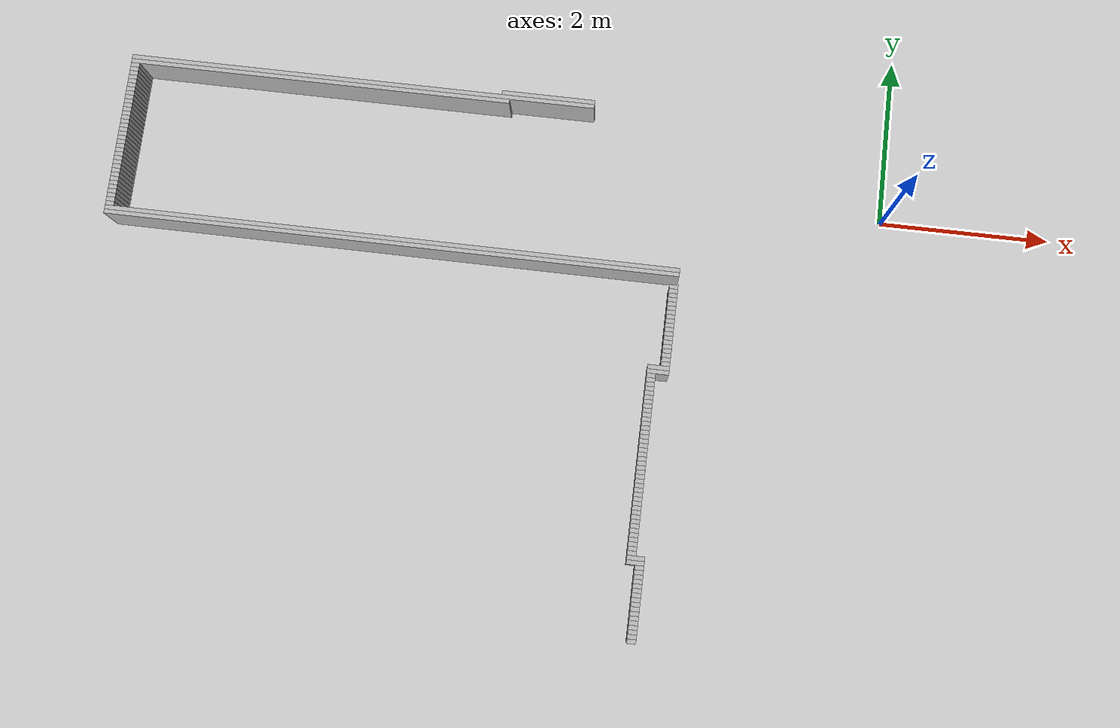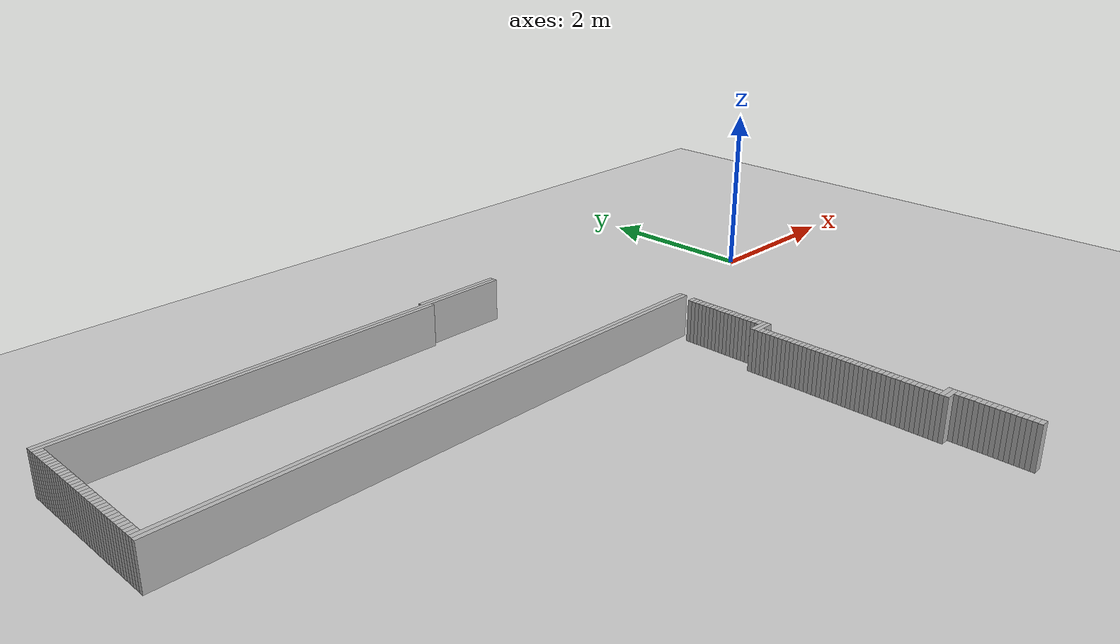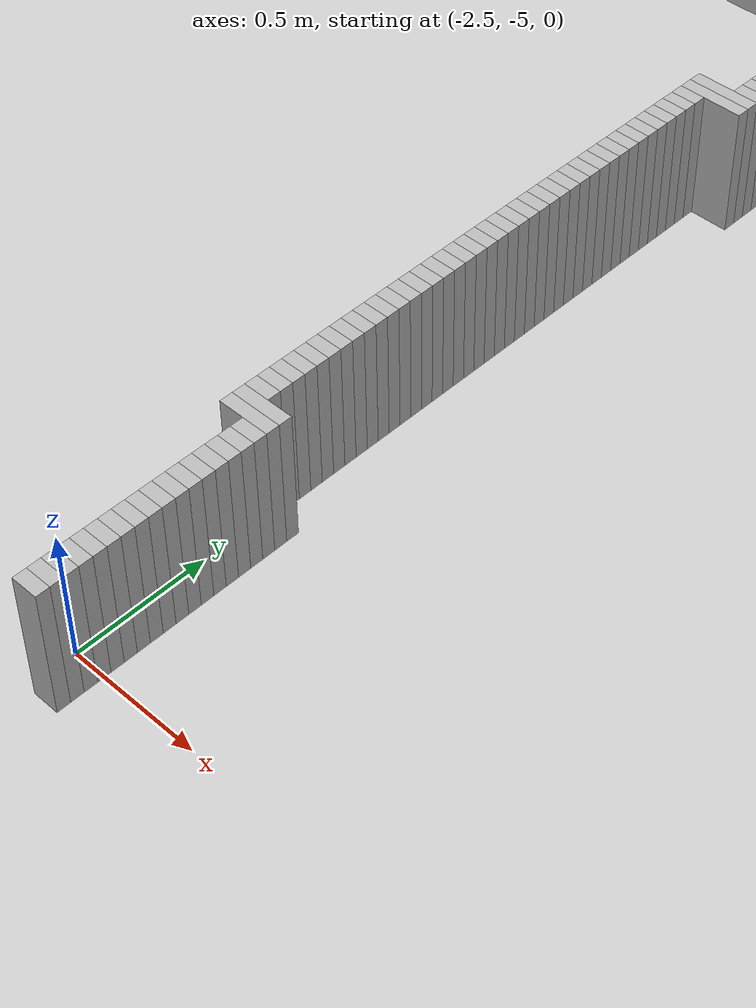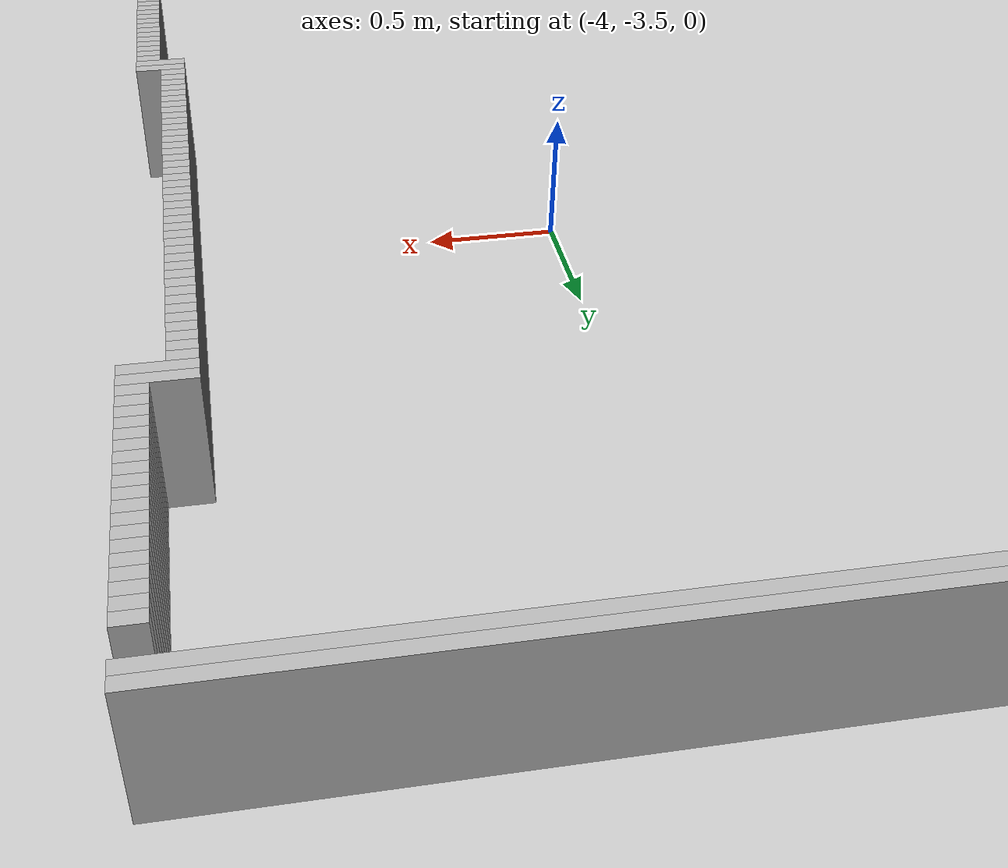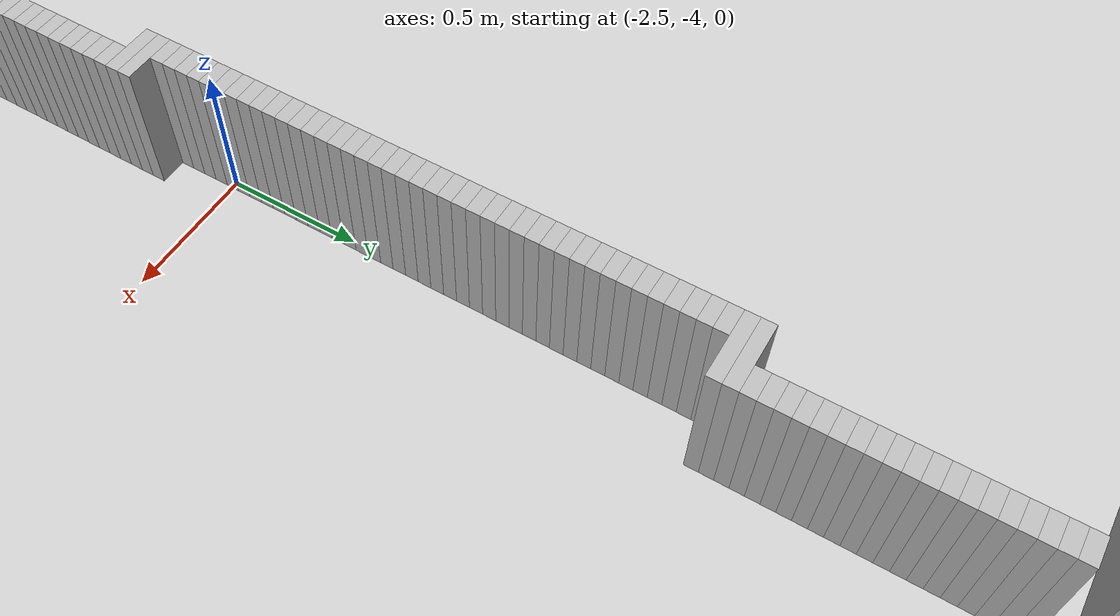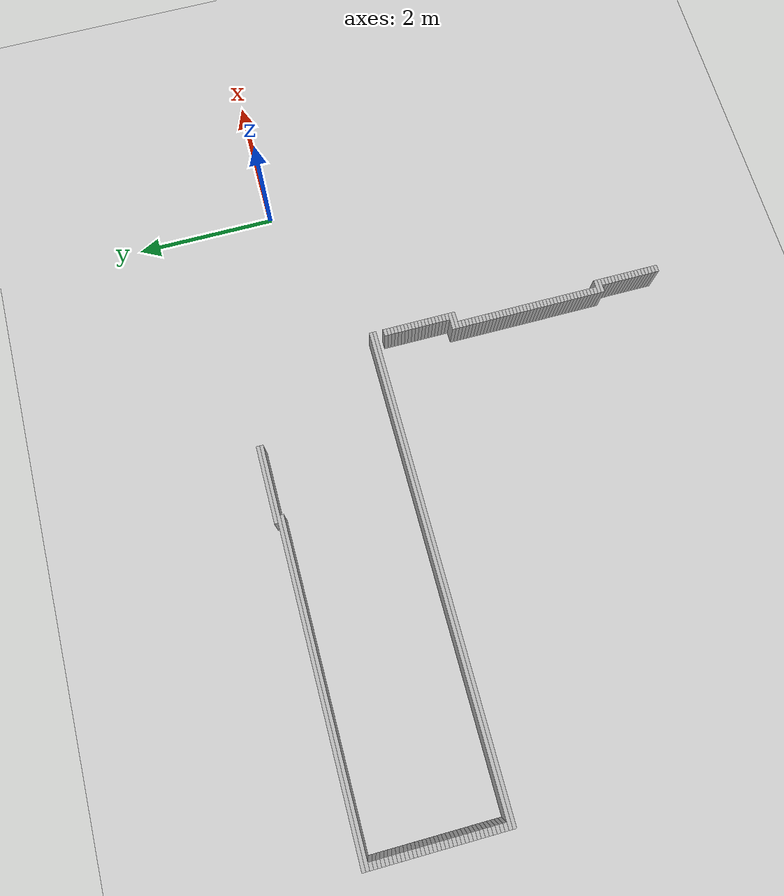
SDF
<sdf version="1.6">
 <world name="optimized_map_world">
  <include><uri>model://sun</uri></include>
  <include><uri>model://ground_plane</uri></include>
  <model name="obstacle_0">
   <static>true</static>
   <link name="link">
    <collision name="collision"><geometry><box><size>1.1 0.05 0.5</size></box></geometry></collision>
    <visual name="visual"><geometry><box><size>1.1 0.05 0.5</size></box></geometry></visual>
   </link>
   <pose>-4.074999999999999 0.9499999999999993 0.25 0 0 0</pose>
  </model>
  <model name="obstacle_1">
   <static>true</static>
   <link name="link">
    <collision name="collision"><geometry><box><size>5.5 0.05 0.5</size></box></geometry></collision>
    <visual name="visual"><geometry><box><size>5.5 0.05 0.5</size></box></geometry></visual>
   </link>
   <pose>-6.274999999999999 0.9000000000000021 0.25 0 0 0</pose>
  </model>
  <model name="obstacle_2">
   <static>true</static>
   <link name="link">
    <collision name="collision"><geometry><box><size>4.5 0.05 0.5</size></box></geometry></collision>
    <visual name="visual"><geometry><box><size>4.5 0.05 0.5</size></box></geometry></visual>
   </link>
   <pose>-6.774999999999999 0.8500000000000014 0.25 0 0 0</pose>
  </model>
  <model name="obstacle_4">
   <static>true</static>
   <link name="link">
    <collision name="collision"><geometry><box><size>0.1 0.05 0.5</size></box></geometry></collision>
    <visual name="visual"><geometry><box><size>0.1 0.05 0.5</size></box></geometry></visual>
   </link>
   <pose>-8.974999999999998 0.8000000000000007 0.25 0 0 0</pose>
  </model>
  <model name="obstacle_6">
   <static>true</static>
   <link name="link">
    <collision name="collision"><geometry><box><size>0.1 0.05 0.5</size></box></geometry></collision>
    <visual name="visual"><geometry><box><size>0.1 0.05 0.5</size></box></geometry></visual>
   </link>
   <pose>-8.974999999999998 0.75 0.25 0 0 0</pose>
  </model>
  <model name="obstacle_11">
   <static>true</static>
   <link name="link">
    <collision name="collision"><geometry><box><size>0.1 0.05 0.5</size></box></geometry></collision>
    <visual name="visual"><geometry><box><size>0.1 0.05 0.5</size></box></geometry></visual>
   </link>
   <pose>-8.974999999999998 0.6999999999999993 0.25 0 0 0</pose>
  </model>
  <model name="obstacle_16">
   <static>true</static>
   <link name="link">
    <collision name="collision"><geometry><box><size>0.1 0.05 0.5</size></box></geometry></collision>
    <visual name="visual"><geometry><box><size>0.1 0.05 0.5</size></box></geometry></visual>
   </link>
   <pose>-8.974999999999998 0.6500000000000021 0.25 0 0 0</pose>
  </model>
  <model name="obstacle_21">
   <static>true</static>
   <link name="link">
    <collision name="collision"><geometry><box><size>0.1 0.05 0.5</size></box></geometry></collision>
    <visual name="visual"><geometry><box><size>0.1 0.05 0.5</size></box></geometry></visual>
   </link>
   <pose>-8.974999999999998 0.6000000000000014 0.25 0 0 0</pose>
  </model>
  <model name="obstacle_26">
   <static>true</static>
   <link name="link">
    <collision name="collision"><geometry><box><size>0.1 0.05 0.5</size></box></geometry></collision>
    <visual name="visual"><geometry><box><size>0.1 0.05 0.5</size></box></geometry></visual>
   </link>
   <pose>-8.974999999999998 0.5500000000000007 0.25 0 0 0</pose>
  </model>
  <model name="obstacle_28">
   <static>true</static>
   <link name="link">
    <collision name="collision"><geometry><box><size>0.1 0.05 0.5</size></box></geometry></collision>
    <visual name="visual"><geometry><box><size>0.1 0.05 0.5</size></box></geometry></visual>
   </link>
   <pose>-8.974999999999998 0.5 0.25 0 0 0</pose>
  </model>
  <model name="obstacle_30">
   <static>true</static>
   <link name="link">
    <collision name="collision"><geometry><box><size>0.1 0.05 0.5</size></box></geometry></collision>
    <visual name="visual"><geometry><box><size>0.1 0.05 0.5</size></box></geometry></visual>
   </link>
   <pose>-8.974999999999998 0.4499999999999993 0.25 0 0 0</pose>
  </model>
  <model name="obstacle_32">
   <static>true</static>
   <link name="link">
    <collision name="collision"><geometry><box><size>0.1 0.05 0.5</size></box></geometry></collision>
    <visual name="visual"><geometry><box><size>0.1 0.05 0.5</size></box></geometry></visual>
   </link>
   <pose>-8.974999999999998 0.40000000000000213 0.25 0 0 0</pose>
  </model>
  <model name="obstacle_34">
   <static>true</static>
   <link name="link">
    <collision name="collision"><geometry><box><size>0.1 0.05 0.5</size></box></geometry></collision>
    <visual name="visual"><geometry><box><size>0.1 0.05 0.5</size></box></geometry></visual>
   </link>
   <pose>-8.974999999999998 0.3500000000000014 0.25 0 0 0</pose>
  </model>
  <model name="obstacle_36">
   <static>true</static>
   <link name="link">
    <collision name="collision"><geometry><box><size>0.1 0.05 0.5</size></box></geometry></collision>
    <visual name="visual"><geometry><box><size>0.1 0.05 0.5</size></box></geometry></visual>
   </link>
   <pose>-8.974999999999998 0.3000000000000007 0.25 0 0 0</pose>
  </model>
  <model name="obstacle_38">
   <static>true</static>
   <link name="link">
    <collision name="collision"><geometry><box><size>0.1 0.05 0.5</size></box></geometry></collision>
    <visual name="visual"><geometry><box><size>0.1 0.05 0.5</size></box></geometry></visual>
   </link>
   <pose>-8.974999999999998 0.25 0.25 0 0 0</pose>
  </model>
  <model name="obstacle_40">
   <static>true</static>
   <link name="link">
    <collision name="collision"><geometry><box><size>0.1 0.05 0.5</size></box></geometry></collision>
    <visual name="visual"><geometry><box><size>0.1 0.05 0.5</size></box></geometry></visual>
   </link>
   <pose>-8.974999999999998 0.1999999999999993 0.25 0 0 0</pose>
  </model>
  <model name="obstacle_42">
   <static>true</static>
   <link name="link">
    <collision name="collision"><geometry><box><size>0.1 0.05 0.5</size></box></geometry></collision>
    <visual name="visual"><geometry><box><size>0.1 0.05 0.5</size></box></geometry></visual>
   </link>
   <pose>-8.974999999999998 0.15000000000000213 0.25 0 0 0</pose>
  </model>
  <model name="obstacle_44">
   <static>true</static>
   <link name="link">
    <collision name="collision"><geometry><box><size>0.1 0.05 0.5</size></box></geometry></collision>
    <visual name="visual"><geometry><box><size>0.1 0.05 0.5</size></box></geometry></visual>
   </link>
   <pose>-8.974999999999998 0.10000000000000142 0.25 0 0 0</pose>
  </model>
  <model name="obstacle_46">
   <static>true</static>
   <link name="link">
    <collision name="collision"><geometry><box><size>0.1 0.05 0.5</size></box></geometry></collision>
    <visual name="visual"><geometry><box><size>0.1 0.05 0.5</size></box></geometry></visual>
   </link>
   <pose>-8.974999999999998 0.05000000000000071 0.25 0 0 0</pose>
  </model>
  <model name="obstacle_48">
   <static>true</static>
   <link name="link">
    <collision name="collision"><geometry><box><size>0.1 0.05 0.5</size></box></geometry></collision>
    <visual name="visual"><geometry><box><size>0.1 0.05 0.5</size></box></geometry></visual>
   </link>
   <pose>-8.974999999999998 0.0 0.25 0 0 0</pose>
  </model>
  <model name="obstacle_50">
   <static>true</static>
   <link name="link">
    <collision name="collision"><geometry><box><size>0.1 0.05 0.5</size></box></geometry></collision>
    <visual name="visual"><geometry><box><size>0.1 0.05 0.5</size></box></geometry></visual>
   </link>
   <pose>-8.974999999999998 -0.05000000000000071 0.25 0 0 0</pose>
  </model>
  <model name="obstacle_52">
   <static>true</static>
   <link name="link">
    <collision name="collision"><geometry><box><size>0.1 0.05 0.5</size></box></geometry></collision>
    <visual name="visual"><geometry><box><size>0.1 0.05 0.5</size></box></geometry></visual>
   </link>
   <pose>-8.974999999999998 -0.09999999999999787 0.25 0 0 0</pose>
  </model>
  <model name="obstacle_54">
   <static>true</static>
   <link name="link">
    <collision name="collision"><geometry><box><size>0.1 0.05 0.5</size></box></geometry></collision>
    <visual name="visual"><geometry><box><size>0.1 0.05 0.5</size></box></geometry></visual>
   </link>
   <pose>-8.974999999999998 -0.14999999999999858 0.25 0 0 0</pose>
  </model>
  <model name="obstacle_56">
   <static>true</static>
   <link name="link">
    <collision name="collision"><geometry><box><size>0.1 0.05 0.5</size></box></geometry></collision>
    <visual name="visual"><geometry><box><size>0.1 0.05 0.5</size></box></geometry></visual>
   </link>
   <pose>-8.974999999999998 -0.1999999999999993 0.25 0 0 0</pose>
  </model>
  <model name="obstacle_58">
   <static>true</static>
   <link name="link">
    <collision name="collision"><geometry><box><size>0.1 0.05 0.5</size></box></geometry></collision>
    <visual name="visual"><geometry><box><size>0.1 0.05 0.5</size></box></geometry></visual>
   </link>
   <pose>-8.974999999999998 -0.25 0.25 0 0 0</pose>
  </model>
  <model name="obstacle_60">
   <static>true</static>
   <link name="link">
    <collision name="collision"><geometry><box><size>0.1 0.05 0.5</size></box></geometry></collision>
    <visual name="visual"><geometry><box><size>0.1 0.05 0.5</size></box></geometry></visual>
   </link>
   <pose>-8.974999999999998 -0.3000000000000007 0.25 0 0 0</pose>
  </model>
  <model name="obstacle_62">
   <static>true</static>
   <link name="link">
    <collision name="collision"><geometry><box><size>0.1 0.05 0.5</size></box></geometry></collision>
    <visual name="visual"><geometry><box><size>0.1 0.05 0.5</size></box></geometry></visual>
   </link>
   <pose>-8.974999999999998 -0.34999999999999787 0.25 0 0 0</pose>
  </model>
  <model name="obstacle_64">
   <static>true</static>
   <link name="link">
    <collision name="collision"><geometry><box><size>0.1 0.05 0.5</size></box></geometry></collision>
    <visual name="visual"><geometry><box><size>0.1 0.05 0.5</size></box></geometry></visual>
   </link>
   <pose>-8.974999999999998 -0.3999999999999986 0.25 0 0 0</pose>
  </model>
  <model name="obstacle_66">
   <static>true</static>
   <link name="link">
    <collision name="collision"><geometry><box><size>0.1 0.05 0.5</size></box></geometry></collision>
    <visual name="visual"><geometry><box><size>0.1 0.05 0.5</size></box></geometry></visual>
   </link>
   <pose>-8.974999999999998 -0.4499999999999993 0.25 0 0 0</pose>
  </model>
  <model name="obstacle_68">
   <static>true</static>
   <link name="link">
    <collision name="collision"><geometry><box><size>0.1 0.05 0.5</size></box></geometry></collision>
    <visual name="visual"><geometry><box><size>0.1 0.05 0.5</size></box></geometry></visual>
   </link>
   <pose>-8.974999999999998 -0.5 0.25 0 0 0</pose>
  </model>
  <model name="obstacle_70">
   <static>true</static>
   <link name="link">
    <collision name="collision"><geometry><box><size>0.1 0.05 0.5</size></box></geometry></collision>
    <visual name="visual"><geometry><box><size>0.1 0.05 0.5</size></box></geometry></visual>
   </link>
   <pose>-8.974999999999998 -0.5500000000000007 0.25 0 0 0</pose>
  </model>
  <model name="obstacle_72">
   <static>true</static>
   <link name="link">
    <collision name="collision"><geometry><box><size>0.1 0.05 0.5</size></box></geometry></collision>
    <visual name="visual"><geometry><box><size>0.1 0.05 0.5</size></box></geometry></visual>
   </link>
   <pose>-8.974999999999998 -0.5999999999999979 0.25 0 0 0</pose>
  </model>
  <model name="obstacle_74">
   <static>true</static>
   <link name="link">
    <collision name="collision"><geometry><box><size>0.1 0.05 0.5</size></box></geometry></collision>
    <visual name="visual"><geometry><box><size>0.1 0.05 0.5</size></box></geometry></visual>
   </link>
   <pose>-8.974999999999998 -0.6499999999999986 0.25 0 0 0</pose>
  </model>
  <model name="obstacle_76">
   <static>true</static>
   <link name="link">
    <collision name="collision"><geometry><box><size>0.1 0.05 0.5</size></box></geometry></collision>
    <visual name="visual"><geometry><box><size>0.1 0.05 0.5</size></box></geometry></visual>
   </link>
   <pose>-8.974999999999998 -0.6999999999999993 0.25 0 0 0</pose>
  </model>
  <model name="obstacle_78">
   <static>true</static>
   <link name="link">
    <collision name="collision"><geometry><box><size>0.1 0.05 0.5</size></box></geometry></collision>
    <visual name="visual"><geometry><box><size>0.1 0.05 0.5</size></box></geometry></visual>
   </link>
   <pose>-8.974999999999998 -0.75 0.25 0 0 0</pose>
  </model>
  <model name="obstacle_80">
   <static>true</static>
   <link name="link">
    <collision name="collision"><geometry><box><size>0.1 0.05 0.5</size></box></geometry></collision>
    <visual name="visual"><geometry><box><size>0.1 0.05 0.5</size></box></geometry></visual>
   </link>
   <pose>-8.974999999999998 -0.8000000000000007 0.25 0 0 0</pose>
  </model>
  <model name="obstacle_83">
   <static>true</static>
   <link name="link">
    <collision name="collision"><geometry><box><size>0.1 0.05 0.5</size></box></geometry></collision>
    <visual name="visual"><geometry><box><size>0.1 0.05 0.5</size></box></geometry></visual>
   </link>
   <pose>-8.974999999999998 -0.8499999999999979 0.25 0 0 0</pose>
  </model>
  <model name="obstacle_87">
   <static>true</static>
   <link name="link">
    <collision name="collision"><geometry><box><size>0.1 0.05 0.5</size></box></geometry></collision>
    <visual name="visual"><geometry><box><size>0.1 0.05 0.5</size></box></geometry></visual>
   </link>
   <pose>-8.974999999999998 -0.8999999999999986 0.25 0 0 0</pose>
  </model>
  <model name="obstacle_92">
   <static>true</static>
   <link name="link">
    <collision name="collision"><geometry><box><size>6.7 0.05 0.5</size></box></geometry></collision>
    <visual name="visual"><geometry><box><size>6.7 0.05 0.5</size></box></geometry></visual>
   </link>
   <pose>-5.674999999999999 -0.9499999999999993 0.25 0 0 0</pose>
  </model>
  <model name="obstacle_98">
   <static>true</static>
   <link name="link">
    <collision name="collision"><geometry><box><size>6.7 0.05 0.5</size></box></geometry></collision>
    <visual name="visual"><geometry><box><size>6.7 0.05 0.5</size></box></geometry></visual>
   </link>
   <pose>-5.674999999999999 -1.0 0.25 0 0 0</pose>
  </model>
  <model name="obstacle_119">
   <static>true</static>
   <link name="link">
    <collision name="collision"><geometry><box><size>0.1 0.05 0.5</size></box></geometry></collision>
    <visual name="visual"><geometry><box><size>0.1 0.05 0.5</size></box></geometry></visual>
   </link>
   <pose>-2.3749999999999982 -1.1499999999999986 0.25 0 0 0</pose>
  </model>
  <model name="obstacle_125">
   <static>true</static>
   <link name="link">
    <collision name="collision"><geometry><box><size>0.1 0.05 0.5</size></box></geometry></collision>
    <visual name="visual"><geometry><box><size>0.1 0.05 0.5</size></box></geometry></visual>
   </link>
   <pose>-2.3749999999999982 -1.1999999999999993 0.25 0 0 0</pose>
  </model>
  <model name="obstacle_130">
   <static>true</static>
   <link name="link">
    <collision name="collision"><geometry><box><size>0.1 0.05 0.5</size></box></geometry></collision>
    <visual name="visual"><geometry><box><size>0.1 0.05 0.5</size></box></geometry></visual>
   </link>
   <pose>-2.3749999999999982 -1.25 0.25 0 0 0</pose>
  </model>
  <model name="obstacle_134">
   <static>true</static>
   <link name="link">
    <collision name="collision"><geometry><box><size>0.1 0.05 0.5</size></box></geometry></collision>
    <visual name="visual"><geometry><box><size>0.1 0.05 0.5</size></box></geometry></visual>
   </link>
   <pose>-2.3749999999999982 -1.3000000000000007 0.25 0 0 0</pose>
  </model>
  <model name="obstacle_138">
   <static>true</static>
   <link name="link">
    <collision name="collision"><geometry><box><size>0.1 0.05 0.5</size></box></geometry></collision>
    <visual name="visual"><geometry><box><size>0.1 0.05 0.5</size></box></geometry></visual>
   </link>
   <pose>-2.3749999999999982 -1.3500000000000014 0.25 0 0 0</pose>
  </model>
  <model name="obstacle_142">
   <static>true</static>
   <link name="link">
    <collision name="collision"><geometry><box><size>0.1 0.05 0.5</size></box></geometry></collision>
    <visual name="visual"><geometry><box><size>0.1 0.05 0.5</size></box></geometry></visual>
   </link>
   <pose>-2.3749999999999982 -1.3999999999999986 0.25 0 0 0</pose>
  </model>
  <model name="obstacle_146">
   <static>true</static>
   <link name="link">
    <collision name="collision"><geometry><box><size>0.1 0.05 0.5</size></box></geometry></collision>
    <visual name="visual"><geometry><box><size>0.1 0.05 0.5</size></box></geometry></visual>
   </link>
   <pose>-2.3749999999999982 -1.4499999999999993 0.25 0 0 0</pose>
  </model>
  <model name="obstacle_150">
   <static>true</static>
   <link name="link">
    <collision name="collision"><geometry><box><size>0.1 0.05 0.5</size></box></geometry></collision>
    <visual name="visual"><geometry><box><size>0.1 0.05 0.5</size></box></geometry></visual>
   </link>
   <pose>-2.3749999999999982 -1.5 0.25 0 0 0</pose>
  </model>
  <model name="obstacle_154">
   <static>true</static>
   <link name="link">
    <collision name="collision"><geometry><box><size>0.1 0.05 0.5</size></box></geometry></collision>
    <visual name="visual"><geometry><box><size>0.1 0.05 0.5</size></box></geometry></visual>
   </link>
   <pose>-2.3749999999999982 -1.5500000000000007 0.25 0 0 0</pose>
  </model>
  <model name="obstacle_158">
   <static>true</static>
   <link name="link">
    <collision name="collision"><geometry><box><size>0.1 0.05 0.5</size></box></geometry></collision>
    <visual name="visual"><geometry><box><size>0.1 0.05 0.5</size></box></geometry></visual>
   </link>
   <pose>-2.3749999999999982 -1.6000000000000014 0.25 0 0 0</pose>
  </model>
  <model name="obstacle_162">
   <static>true</static>
   <link name="link">
    <collision name="collision"><geometry><box><size>0.1 0.05 0.5</size></box></geometry></collision>
    <visual name="visual"><geometry><box><size>0.1 0.05 0.5</size></box></geometry></visual>
   </link>
   <pose>-2.3749999999999982 -1.6499999999999986 0.25 0 0 0</pose>
  </model>
  <model name="obstacle_166">
   <static>true</static>
   <link name="link">
    <collision name="collision"><geometry><box><size>0.1 0.05 0.5</size></box></geometry></collision>
    <visual name="visual"><geometry><box><size>0.1 0.05 0.5</size></box></geometry></visual>
   </link>
   <pose>-2.3749999999999982 -1.6999999999999993 0.25 0 0 0</pose>
  </model>
  <model name="obstacle_170">
   <static>true</static>
   <link name="link">
    <collision name="collision"><geometry><box><size>0.1 0.05 0.5</size></box></geometry></collision>
    <visual name="visual"><geometry><box><size>0.1 0.05 0.5</size></box></geometry></visual>
   </link>
   <pose>-2.3749999999999982 -1.75 0.25 0 0 0</pose>
  </model>
  <model name="obstacle_174">
   <static>true</static>
   <link name="link">
    <collision name="collision"><geometry><box><size>0.1 0.05 0.5</size></box></geometry></collision>
    <visual name="visual"><geometry><box><size>0.1 0.05 0.5</size></box></geometry></visual>
   </link>
   <pose>-2.3749999999999982 -1.8000000000000007 0.25 0 0 0</pose>
  </model>
  <model name="obstacle_178">
   <static>true</static>
   <link name="link">
    <collision name="collision"><geometry><box><size>0.1 0.05 0.5</size></box></geometry></collision>
    <visual name="visual"><geometry><box><size>0.1 0.05 0.5</size></box></geometry></visual>
   </link>
   <pose>-2.3749999999999982 -1.8500000000000014 0.25 0 0 0</pose>
  </model>
  <model name="obstacle_182">
   <static>true</static>
   <link name="link">
    <collision name="collision"><geometry><box><size>0.1 0.05 0.5</size></box></geometry></collision>
    <visual name="visual"><geometry><box><size>0.1 0.05 0.5</size></box></geometry></visual>
   </link>
   <pose>-2.3749999999999982 -1.8999999999999986 0.25 0 0 0</pose>
  </model>
  <model name="obstacle_186">
   <static>true</static>
   <link name="link">
    <collision name="collision"><geometry><box><size>0.1 0.05 0.5</size></box></geometry></collision>
    <visual name="visual"><geometry><box><size>0.1 0.05 0.5</size></box></geometry></visual>
   </link>
   <pose>-2.3749999999999982 -1.9499999999999993 0.25 0 0 0</pose>
  </model>
  <model name="obstacle_190">
   <static>true</static>
   <link name="link">
    <collision name="collision"><geometry><box><size>0.1 0.05 0.5</size></box></geometry></collision>
    <visual name="visual"><geometry><box><size>0.1 0.05 0.5</size></box></geometry></visual>
   </link>
   <pose>-2.3749999999999982 -2.0 0.25 0 0 0</pose>
  </model>
  <model name="obstacle_194">
   <static>true</static>
   <link name="link">
    <collision name="collision"><geometry><box><size>0.1 0.05 0.5</size></box></geometry></collision>
    <visual name="visual"><geometry><box><size>0.1 0.05 0.5</size></box></geometry></visual>
   </link>
   <pose>-2.3749999999999982 -2.0500000000000007 0.25 0 0 0</pose>
  </model>
  <model name="obstacle_198">
   <static>true</static>
   <link name="link">
    <collision name="collision"><geometry><box><size>0.25 0.05 0.5</size></box></geometry></collision>
    <visual name="visual"><geometry><box><size>0.25 0.05 0.5</size></box></geometry></visual>
   </link>
   <pose>-2.4499999999999993 -2.1000000000000014 0.25 0 0 0</pose>
  </model>
  <model name="obstacle_202">
   <static>true</static>
   <link name="link">
    <collision name="collision"><geometry><box><size>0.25 0.05 0.5</size></box></geometry></collision>
    <visual name="visual"><geometry><box><size>0.25 0.05 0.5</size></box></geometry></visual>
   </link>
   <pose>-2.4499999999999993 -2.1499999999999986 0.25 0 0 0</pose>
  </model>
  <model name="obstacle_206">
   <static>true</static>
   <link name="link">
    <collision name="collision"><geometry><box><size>0.1 0.05 0.5</size></box></geometry></collision>
    <visual name="visual"><geometry><box><size>0.1 0.05 0.5</size></box></geometry></visual>
   </link>
   <pose>-2.5249999999999986 -2.1999999999999993 0.25 0 0 0</pose>
  </model>
  <model name="obstacle_210">
   <static>true</static>
   <link name="link">
    <collision name="collision"><geometry><box><size>0.1 0.05 0.5</size></box></geometry></collision>
    <visual name="visual"><geometry><box><size>0.1 0.05 0.5</size></box></geometry></visual>
   </link>
   <pose>-2.5249999999999986 -2.25 0.25 0 0 0</pose>
  </model>
  <model name="obstacle_214">
   <static>true</static>
   <link name="link">
    <collision name="collision"><geometry><box><size>0.1 0.05 0.5</size></box></geometry></collision>
    <visual name="visual"><geometry><box><size>0.1 0.05 0.5</size></box></geometry></visual>
   </link>
   <pose>-2.5249999999999986 -2.3000000000000007 0.25 0 0 0</pose>
  </model>
  <model name="obstacle_218">
   <static>true</static>
   <link name="link">
    <collision name="collision"><geometry><box><size>0.1 0.05 0.5</size></box></geometry></collision>
    <visual name="visual"><geometry><box><size>0.1 0.05 0.5</size></box></geometry></visual>
   </link>
   <pose>-2.5249999999999986 -2.3500000000000014 0.25 0 0 0</pose>
  </model>
  <model name="obstacle_222">
   <static>true</static>
   <link name="link">
    <collision name="collision"><geometry><box><size>0.1 0.05 0.5</size></box></geometry></collision>
    <visual name="visual"><geometry><box><size>0.1 0.05 0.5</size></box></geometry></visual>
   </link>
   <pose>-2.5249999999999986 -2.3999999999999986 0.25 0 0 0</pose>
  </model>
  <model name="obstacle_226">
   <static>true</static>
   <link name="link">
    <collision name="collision"><geometry><box><size>0.1 0.05 0.5</size></box></geometry></collision>
    <visual name="visual"><geometry><box><size>0.1 0.05 0.5</size></box></geometry></visual>
   </link>
   <pose>-2.5249999999999986 -2.4499999999999993 0.25 0 0 0</pose>
  </model>
  <model name="obstacle_230">
   <static>true</static>
   <link name="link">
    <collision name="collision"><geometry><box><size>0.1 0.05 0.5</size></box></geometry></collision>
    <visual name="visual"><geometry><box><size>0.1 0.05 0.5</size></box></geometry></visual>
   </link>
   <pose>-2.5249999999999986 -2.5 0.25 0 0 0</pose>
  </model>
  <model name="obstacle_234">
   <static>true</static>
   <link name="link">
    <collision name="collision"><geometry><box><size>0.1 0.05 0.5</size></box></geometry></collision>
    <visual name="visual"><geometry><box><size>0.1 0.05 0.5</size></box></geometry></visual>
   </link>
   <pose>-2.5249999999999986 -2.5500000000000007 0.25 0 0 0</pose>
  </model>
  <model name="obstacle_238">
   <static>true</static>
   <link name="link">
    <collision name="collision"><geometry><box><size>0.1 0.05 0.5</size></box></geometry></collision>
    <visual name="visual"><geometry><box><size>0.1 0.05 0.5</size></box></geometry></visual>
   </link>
   <pose>-2.5249999999999986 -2.6000000000000014 0.25 0 0 0</pose>
  </model>
  <model name="obstacle_242">
   <static>true</static>
   <link name="link">
    <collision name="collision"><geometry><box><size>0.1 0.05 0.5</size></box></geometry></collision>
    <visual name="visual"><geometry><box><size>0.1 0.05 0.5</size></box></geometry></visual>
   </link>
   <pose>-2.5249999999999986 -2.6499999999999986 0.25 0 0 0</pose>
  </model>
  <model name="obstacle_246">
   <static>true</static>
   <link name="link">
    <collision name="collision"><geometry><box><size>0.1 0.05 0.5</size></box></geometry></collision>
    <visual name="visual"><geometry><box><size>0.1 0.05 0.5</size></box></geometry></visual>
   </link>
   <pose>-2.5249999999999986 -2.6999999999999993 0.25 0 0 0</pose>
  </model>
  <model name="obstacle_250">
   <static>true</static>
   <link name="link">
    <collision name="collision"><geometry><box><size>0.1 0.05 0.5</size></box></geometry></collision>
    <visual name="visual"><geometry><box><size>0.1 0.05 0.5</size></box></geometry></visual>
   </link>
   <pose>-2.5249999999999986 -2.75 0.25 0 0 0</pose>
  </model>
  <model name="obstacle_254">
   <static>true</static>
   <link name="link">
    <collision name="collision"><geometry><box><size>0.1 0.05 0.5</size></box></geometry></collision>
    <visual name="visual"><geometry><box><size>0.1 0.05 0.5</size></box></geometry></visual>
   </link>
   <pose>-2.5249999999999986 -2.8000000000000007 0.25 0 0 0</pose>
  </model>
  <model name="obstacle_258">
   <static>true</static>
   <link name="link">
    <collision name="collision"><geometry><box><size>0.1 0.05 0.5</size></box></geometry></collision>
    <visual name="visual"><geometry><box><size>0.1 0.05 0.5</size></box></geometry></visual>
   </link>
   <pose>-2.5249999999999986 -2.8500000000000014 0.25 0 0 0</pose>
  </model>
  <model name="obstacle_262">
   <static>true</static>
   <link name="link">
    <collision name="collision"><geometry><box><size>0.1 0.05 0.5</size></box></geometry></collision>
    <visual name="visual"><geometry><box><size>0.1 0.05 0.5</size></box></geometry></visual>
   </link>
   <pose>-2.5249999999999986 -2.8999999999999986 0.25 0 0 0</pose>
  </model>
  <model name="obstacle_266">
   <static>true</static>
   <link name="link">
    <collision name="collision"><geometry><box><size>0.1 0.05 0.5</size></box></geometry></collision>
    <visual name="visual"><geometry><box><size>0.1 0.05 0.5</size></box></geometry></visual>
   </link>
   <pose>-2.5249999999999986 -2.9499999999999993 0.25 0 0 0</pose>
  </model>
  <model name="obstacle_270">
   <static>true</static>
   <link name="link">
    <collision name="collision"><geometry><box><size>0.1 0.05 0.5</size></box></geometry></collision>
    <visual name="visual"><geometry><box><size>0.1 0.05 0.5</size></box></geometry></visual>
   </link>
   <pose>-2.5249999999999986 -3.0 0.25 0 0 0</pose>
  </model>
  <model name="obstacle_274">
   <static>true</static>
   <link name="link">
    <collision name="collision"><geometry><box><size>0.1 0.05 0.5</size></box></geometry></collision>
    <visual name="visual"><geometry><box><size>0.1 0.05 0.5</size></box></geometry></visual>
   </link>
   <pose>-2.5249999999999986 -3.0500000000000007 0.25 0 0 0</pose>
  </model>
  <model name="obstacle_278">
   <static>true</static>
   <link name="link">
    <collision name="collision"><geometry><box><size>0.1 0.05 0.5</size></box></geometry></collision>
    <visual name="visual"><geometry><box><size>0.1 0.05 0.5</size></box></geometry></visual>
   </link>
   <pose>-2.5249999999999986 -3.1000000000000014 0.25 0 0 0</pose>
  </model>
  <model name="obstacle_282">
   <static>true</static>
   <link name="link">
    <collision name="collision"><geometry><box><size>0.1 0.05 0.5</size></box></geometry></collision>
    <visual name="visual"><geometry><box><size>0.1 0.05 0.5</size></box></geometry></visual>
   </link>
   <pose>-2.5249999999999986 -3.1499999999999986 0.25 0 0 0</pose>
  </model>
  <model name="obstacle_286">
   <static>true</static>
   <link name="link">
    <collision name="collision"><geometry><box><size>0.1 0.05 0.5</size></box></geometry></collision>
    <visual name="visual"><geometry><box><size>0.1 0.05 0.5</size></box></geometry></visual>
   </link>
   <pose>-2.5249999999999986 -3.1999999999999993 0.25 0 0 0</pose>
  </model>
  <model name="obstacle_290">
   <static>true</static>
   <link name="link">
    <collision name="collision"><geometry><box><size>0.1 0.05 0.5</size></box></geometry></collision>
    <visual name="visual"><geometry><box><size>0.1 0.05 0.5</size></box></geometry></visual>
   </link>
   <pose>-2.5249999999999986 -3.25 0.25 0 0 0</pose>
  </model>
  <model name="obstacle_294">
   <static>true</static>
   <link name="link">
    <collision name="collision"><geometry><box><size>0.1 0.05 0.5</size></box></geometry></collision>
    <visual name="visual"><geometry><box><size>0.1 0.05 0.5</size></box></geometry></visual>
   </link>
   <pose>-2.5249999999999986 -3.3000000000000007 0.25 0 0 0</pose>
  </model>
  <model name="obstacle_298">
   <static>true</static>
   <link name="link">
    <collision name="collision"><geometry><box><size>0.1 0.05 0.5</size></box></geometry></collision>
    <visual name="visual"><geometry><box><size>0.1 0.05 0.5</size></box></geometry></visual>
   </link>
   <pose>-2.5249999999999986 -3.3500000000000014 0.25 0 0 0</pose>
  </model>
  <model name="obstacle_302">
   <static>true</static>
   <link name="link">
    <collision name="collision"><geometry><box><size>0.1 0.05 0.5</size></box></geometry></collision>
    <visual name="visual"><geometry><box><size>0.1 0.05 0.5</size></box></geometry></visual>
   </link>
   <pose>-2.5249999999999986 -3.3999999999999986 0.25 0 0 0</pose>
  </model>
  <model name="obstacle_306">
   <static>true</static>
   <link name="link">
    <collision name="collision"><geometry><box><size>0.1 0.05 0.5</size></box></geometry></collision>
    <visual name="visual"><geometry><box><size>0.1 0.05 0.5</size></box></geometry></visual>
   </link>
   <pose>-2.5249999999999986 -3.4499999999999993 0.25 0 0 0</pose>
  </model>
  <model name="obstacle_310">
   <static>true</static>
   <link name="link">
    <collision name="collision"><geometry><box><size>0.1 0.05 0.5</size></box></geometry></collision>
    <visual name="visual"><geometry><box><size>0.1 0.05 0.5</size></box></geometry></visual>
   </link>
   <pose>-2.5249999999999986 -3.5 0.25 0 0 0</pose>
  </model>
  <model name="obstacle_314">
   <static>true</static>
   <link name="link">
    <collision name="collision"><geometry><box><size>0.1 0.05 0.5</size></box></geometry></collision>
    <visual name="visual"><geometry><box><size>0.1 0.05 0.5</size></box></geometry></visual>
   </link>
   <pose>-2.5249999999999986 -3.5500000000000007 0.25 0 0 0</pose>
  </model>
  <model name="obstacle_318">
   <static>true</static>
   <link name="link">
    <collision name="collision"><geometry><box><size>0.1 0.05 0.5</size></box></geometry></collision>
    <visual name="visual"><geometry><box><size>0.1 0.05 0.5</size></box></geometry></visual>
   </link>
   <pose>-2.5249999999999986 -3.6000000000000014 0.25 0 0 0</pose>
  </model>
  <model name="obstacle_322">
   <static>true</static>
   <link name="link">
    <collision name="collision"><geometry><box><size>0.1 0.05 0.5</size></box></geometry></collision>
    <visual name="visual"><geometry><box><size>0.1 0.05 0.5</size></box></geometry></visual>
   </link>
   <pose>-2.5249999999999986 -3.6499999999999986 0.25 0 0 0</pose>
  </model>
  <model name="obstacle_326">
   <static>true</static>
   <link name="link">
    <collision name="collision"><geometry><box><size>0.1 0.05 0.5</size></box></geometry></collision>
    <visual name="visual"><geometry><box><size>0.1 0.05 0.5</size></box></geometry></visual>
   </link>
   <pose>-2.5249999999999986 -3.6999999999999993 0.25 0 0 0</pose>
  </model>
  <model name="obstacle_330">
   <static>true</static>
   <link name="link">
    <collision name="collision"><geometry><box><size>0.1 0.05 0.5</size></box></geometry></collision>
    <visual name="visual"><geometry><box><size>0.1 0.05 0.5</size></box></geometry></visual>
   </link>
   <pose>-2.5249999999999986 -3.75 0.25 0 0 0</pose>
  </model>
  <model name="obstacle_334">
   <static>true</static>
   <link name="link">
    <collision name="collision"><geometry><box><size>0.1 0.05 0.5</size></box></geometry></collision>
    <visual name="visual"><geometry><box><size>0.1 0.05 0.5</size></box></geometry></visual>
   </link>
   <pose>-2.5249999999999986 -3.8000000000000007 0.25 0 0 0</pose>
  </model>
  <model name="obstacle_338">
   <static>true</static>
   <link name="link">
    <collision name="collision"><geometry><box><size>0.1 0.05 0.5</size></box></geometry></collision>
    <visual name="visual"><geometry><box><size>0.1 0.05 0.5</size></box></geometry></visual>
   </link>
   <pose>-2.5249999999999986 -3.8500000000000014 0.25 0 0 0</pose>
  </model>
  <model name="obstacle_342">
   <static>true</static>
   <link name="link">
    <collision name="collision"><geometry><box><size>0.1 0.05 0.5</size></box></geometry></collision>
    <visual name="visual"><geometry><box><size>0.1 0.05 0.5</size></box></geometry></visual>
   </link>
   <pose>-2.5249999999999986 -3.8999999999999986 0.25 0 0 0</pose>
  </model>
  <model name="obstacle_346">
   <static>true</static>
   <link name="link">
    <collision name="collision"><geometry><box><size>0.1 0.05 0.5</size></box></geometry></collision>
    <visual name="visual"><geometry><box><size>0.1 0.05 0.5</size></box></geometry></visual>
   </link>
   <pose>-2.5249999999999986 -3.9499999999999993 0.25 0 0 0</pose>
  </model>
  <model name="obstacle_350">
   <static>true</static>
   <link name="link">
    <collision name="collision"><geometry><box><size>0.1 0.05 0.5</size></box></geometry></collision>
    <visual name="visual"><geometry><box><size>0.1 0.05 0.5</size></box></geometry></visual>
   </link>
   <pose>-2.5249999999999986 -4.0 0.25 0 0 0</pose>
  </model>
  <model name="obstacle_354">
   <static>true</static>
   <link name="link">
    <collision name="collision"><geometry><box><size>0.1 0.05 0.5</size></box></geometry></collision>
    <visual name="visual"><geometry><box><size>0.1 0.05 0.5</size></box></geometry></visual>
   </link>
   <pose>-2.5249999999999986 -4.050000000000001 0.25 0 0 0</pose>
  </model>
  <model name="obstacle_358">
   <static>true</static>
   <link name="link">
    <collision name="collision"><geometry><box><size>0.1 0.05 0.5</size></box></geometry></collision>
    <visual name="visual"><geometry><box><size>0.1 0.05 0.5</size></box></geometry></visual>
   </link>
   <pose>-2.5249999999999986 -4.100000000000001 0.25 0 0 0</pose>
  </model>
  <model name="obstacle_362">
   <static>true</static>
   <link name="link">
    <collision name="collision"><geometry><box><size>0.1 0.05 0.5</size></box></geometry></collision>
    <visual name="visual"><geometry><box><size>0.1 0.05 0.5</size></box></geometry></visual>
   </link>
   <pose>-2.5249999999999986 -4.149999999999999 0.25 0 0 0</pose>
  </model>
  <model name="obstacle_366">
   <static>true</static>
   <link name="link">
    <collision name="collision"><geometry><box><size>0.1 0.05 0.5</size></box></geometry></collision>
    <visual name="visual"><geometry><box><size>0.1 0.05 0.5</size></box></geometry></visual>
   </link>
   <pose>-2.5249999999999986 -4.199999999999999 0.25 0 0 0</pose>
  </model>
  <model name="obstacle_370">
   <static>true</static>
   <link name="link">
    <collision name="collision"><geometry><box><size>0.2 0.05 0.5</size></box></geometry></collision>
    <visual name="visual"><geometry><box><size>0.2 0.05 0.5</size></box></geometry></visual>
   </link>
   <pose>-2.474999999999998 -4.25 0.25 0 0 0</pose>
  </model>
  <model name="obstacle_374">
   <static>true</static>
   <link name="link">
    <collision name="collision"><geometry><box><size>0.2 0.05 0.5</size></box></geometry></collision>
    <visual name="visual"><geometry><box><size>0.2 0.05 0.5</size></box></geometry></visual>
   </link>
   <pose>-2.474999999999998 -4.300000000000001 0.25 0 0 0</pose>
  </model>
  <model name="obstacle_378">
   <static>true</static>
   <link name="link">
    <collision name="collision"><geometry><box><size>0.1 0.05 0.5</size></box></geometry></collision>
    <visual name="visual"><geometry><box><size>0.1 0.05 0.5</size></box></geometry></visual>
   </link>
   <pose>-2.424999999999999 -4.35 0.25 0 0 0</pose>
  </model>
  <model name="obstacle_382">
   <static>true</static>
   <link name="link">
    <collision name="collision"><geometry><box><size>0.1 0.05 0.5</size></box></geometry></collision>
    <visual name="visual"><geometry><box><size>0.1 0.05 0.5</size></box></geometry></visual>
   </link>
   <pose>-2.424999999999999 -4.4 0.25 0 0 0</pose>
  </model>
  <model name="obstacle_386">
   <static>true</static>
   <link name="link">
    <collision name="collision"><geometry><box><size>0.1 0.05 0.5</size></box></geometry></collision>
    <visual name="visual"><geometry><box><size>0.1 0.05 0.5</size></box></geometry></visual>
   </link>
   <pose>-2.424999999999999 -4.449999999999999 0.25 0 0 0</pose>
  </model>
  <model name="obstacle_390">
   <static>true</static>
   <link name="link">
    <collision name="collision"><geometry><box><size>0.1 0.05 0.5</size></box></geometry></collision>
    <visual name="visual"><geometry><box><size>0.1 0.05 0.5</size></box></geometry></visual>
   </link>
   <pose>-2.424999999999999 -4.5 0.25 0 0 0</pose>
  </model>
  <model name="obstacle_394">
   <static>true</static>
   <link name="link">
    <collision name="collision"><geometry><box><size>0.1 0.05 0.5</size></box></geometry></collision>
    <visual name="visual"><geometry><box><size>0.1 0.05 0.5</size></box></geometry></visual>
   </link>
   <pose>-2.424999999999999 -4.550000000000001 0.25 0 0 0</pose>
  </model>
  <model name="obstacle_398">
   <static>true</static>
   <link name="link">
    <collision name="collision"><geometry><box><size>0.1 0.05 0.5</size></box></geometry></collision>
    <visual name="visual"><geometry><box><size>0.1 0.05 0.5</size></box></geometry></visual>
   </link>
   <pose>-2.424999999999999 -4.6 0.25 0 0 0</pose>
  </model>
  <model name="obstacle_402">
   <static>true</static>
   <link name="link">
    <collision name="collision"><geometry><box><size>0.1 0.05 0.5</size></box></geometry></collision>
    <visual name="visual"><geometry><box><size>0.1 0.05 0.5</size></box></geometry></visual>
   </link>
   <pose>-2.424999999999999 -4.65 0.25 0 0 0</pose>
  </model>
  <model name="obstacle_406">
   <static>true</static>
   <link name="link">
    <collision name="collision"><geometry><box><size>0.1 0.05 0.5</size></box></geometry></collision>
    <visual name="visual"><geometry><box><size>0.1 0.05 0.5</size></box></geometry></visual>
   </link>
   <pose>-2.424999999999999 -4.699999999999999 0.25 0 0 0</pose>
  </model>
  <model name="obstacle_410">
   <static>true</static>
   <link name="link">
    <collision name="collision"><geometry><box><size>0.1 0.05 0.5</size></box></geometry></collision>
    <visual name="visual"><geometry><box><size>0.1 0.05 0.5</size></box></geometry></visual>
   </link>
   <pose>-2.424999999999999 -4.75 0.25 0 0 0</pose>
  </model>
  <model name="obstacle_414">
   <static>true</static>
   <link name="link">
    <collision name="collision"><geometry><box><size>0.1 0.05 0.5</size></box></geometry></collision>
    <visual name="visual"><geometry><box><size>0.1 0.05 0.5</size></box></geometry></visual>
   </link>
   <pose>-2.424999999999999 -4.800000000000001 0.25 0 0 0</pose>
  </model>
  <model name="obstacle_418">
   <static>true</static>
   <link name="link">
    <collision name="collision"><geometry><box><size>0.1 0.05 0.5</size></box></geometry></collision>
    <visual name="visual"><geometry><box><size>0.1 0.05 0.5</size></box></geometry></visual>
   </link>
   <pose>-2.424999999999999 -4.85 0.25 0 0 0</pose>
  </model>
  <model name="obstacle_422">
   <static>true</static>
   <link name="link">
    <collision name="collision"><geometry><box><size>0.1 0.05 0.5</size></box></geometry></collision>
    <visual name="visual"><geometry><box><size>0.1 0.05 0.5</size></box></geometry></visual>
   </link>
   <pose>-2.424999999999999 -4.9 0.25 0 0 0</pose>
  </model>
  <model name="obstacle_426">
   <static>true</static>
   <link name="link">
    <collision name="collision"><geometry><box><size>0.1 0.05 0.5</size></box></geometry></collision>
    <visual name="visual"><geometry><box><size>0.1 0.05 0.5</size></box></geometry></visual>
   </link>
   <pose>-2.424999999999999 -4.949999999999999 0.25 0 0 0</pose>
  </model>
  <model name="obstacle_430">
   <static>true</static>
   <link name="link">
    <collision name="collision"><geometry><box><size>0.1 0.05 0.5</size></box></geometry></collision>
    <visual name="visual"><geometry><box><size>0.1 0.05 0.5</size></box></geometry></visual>
   </link>
   <pose>-2.424999999999999 -5.0 0.25 0 0 0</pose>
  </model>
  <model name="obstacle_434">
   <static>true</static>
   <link name="link">
    <collision name="collision"><geometry><box><size>0.1 0.05 0.5</size></box></geometry></collision>
    <visual name="visual"><geometry><box><size>0.1 0.05 0.5</size></box></geometry></visual>
   </link>
   <pose>-2.424999999999999 -5.050000000000001 0.25 0 0 0</pose>
  </model>
  <model name="obstacle_438">
   <static>true</static>
   <link name="link">
    <collision name="collision"><geometry><box><size>0.1 0.05 0.5</size></box></geometry></collision>
    <visual name="visual"><geometry><box><size>0.1 0.05 0.5</size></box></geometry></visual>
   </link>
   <pose>-2.424999999999999 -5.1 0.25 0 0 0</pose>
  </model>
  <model name="obstacle_442">
   <static>true</static>
   <link name="link">
    <collision name="collision"><geometry><box><size>0.1 0.05 0.5</size></box></geometry></collision>
    <visual name="visual"><geometry><box><size>0.1 0.05 0.5</size></box></geometry></visual>
   </link>
   <pose>-2.424999999999999 -5.15 0.25 0 0 0</pose>
  </model>
 </world>
</sdf>
